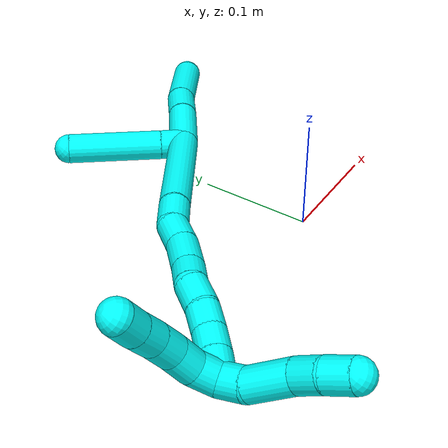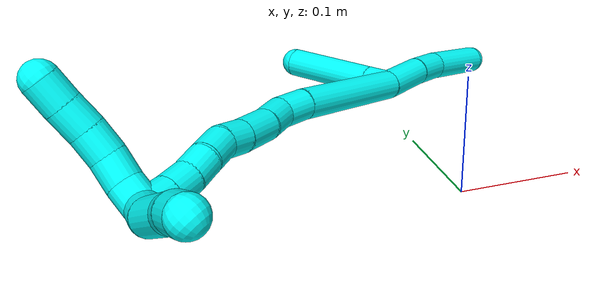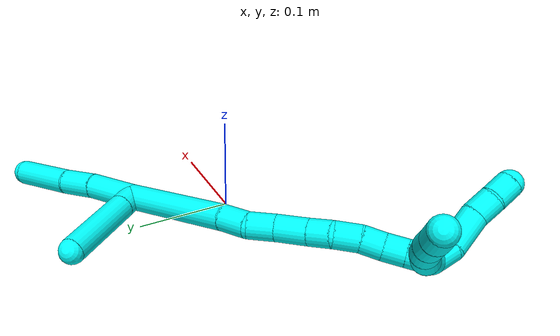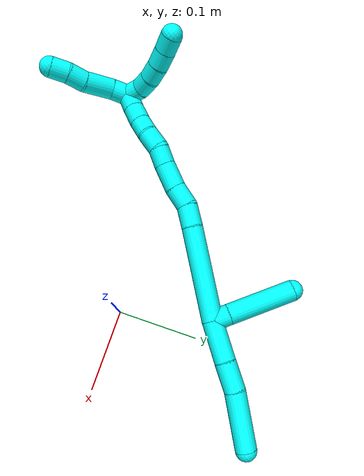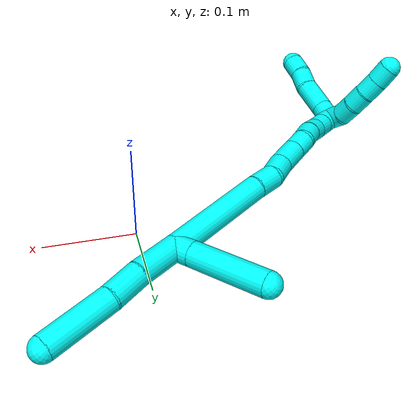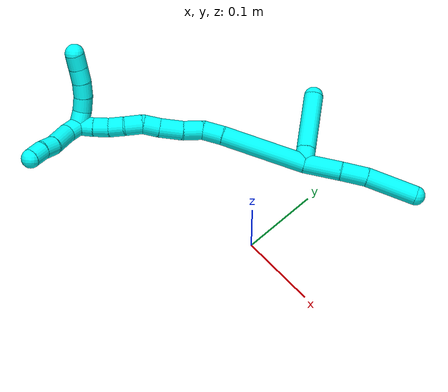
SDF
<sdf version="1.7">
 <world name="default">
  <model name="3">
   <static>0</static>
   <link name="3">
    <collision name="collision-cylinder-e_1_2_8">
     <pose>0.012745 0.01998 -0.003844 -1.76085 0.559586 -0.669558</pose>
     <geometry><cylinder><radius>0.0125</radius><length>0.048017</length></cylinder></geometry>
     <surface>
      <friction><ode><mu>1.16</mu><mu2>1.16</mu2><slip1>0</slip1><slip2>0</slip2></ode></friction>
      <contact><ode><kp>1e+06</kp><kd>1</kd><max_vel>0</max_vel><min_depth>0.001</min_depth></ode></contact>
     </surface>
    </collision>
    <visual name="visual-cylinder-e_1_2_8">
     <pose>0.012745 0.01998 -0.003844 -1.76085 0.559586 -0.669558</pose>
     <geometry><cylinder><radius>0.0125</radius><length>0.048017</length></cylinder></geometry>
     <material><ambient>0.003922 1 0.996078 1</ambient></material>
    </visual>
    <collision name="collision-cylinder-e_2_8_9">
     <pose>0.033257 0.055106 -0.011115 -1.79333 0.463807 -0.574756</pose>
     <geometry><cylinder><radius>0.0125</radius><length>0.034726</length></cylinder></geometry>
     <surface>
      <friction><ode><mu>1.16</mu><mu2>1.16</mu2><slip1>0</slip1><slip2>0</slip2></ode></friction>
      <contact><ode><kp>1e+06</kp><kd>1</kd><max_vel>0</max_vel><min_depth>0.001</min_depth></ode></contact>
     </surface>
    </collision>
    <visual name="visual-cylinder-e_2_8_9">
     <pose>0.033257 0.055106 -0.011115 -1.79333 0.463807 -0.574756</pose>
     <geometry><cylinder><radius>0.0125</radius><length>0.034726</length></cylinder></geometry>
     <material><ambient>0.003922 1 0.996078 1</ambient></material>
    </visual>
    <collision name="collision-cylinder-e_3_9_6">
     <pose>0.057229 0.09768 -0.025311 -1.94495 0.502807 -0.720653</pose>
     <geometry><cylinder><radius>0.0125</radius><length>0.067257</length></cylinder></geometry>
     <surface>
      <friction><ode><mu>1.16</mu><mu2>1.16</mu2><slip1>0</slip1><slip2>0</slip2></ode></friction>
      <contact><ode><kp>1e+06</kp><kd>1</kd><max_vel>0</max_vel><min_depth>0.001</min_depth></ode></contact>
     </surface>
    </collision>
    <visual name="visual-cylinder-e_3_9_6">
     <pose>0.057229 0.09768 -0.025311 -1.94495 0.502807 -0.720653</pose>
     <geometry><cylinder><radius>0.0125</radius><length>0.067257</length></cylinder></geometry>
     <material><ambient>0.003922 1 0.996078 1</ambient></material>
    </visual>
    <collision name="collision-cylinder-e_1_2_10">
     <pose>-0.005086 0.003832 0.007901 -0.451541 -0.524989 0.123274</pose>
     <geometry><cylinder><radius>0.0125</radius><length>0.020295</length></cylinder></geometry>
     <surface>
      <friction><ode><mu>1.16</mu><mu2>1.16</mu2><slip1>0</slip1><slip2>0</slip2></ode></friction>
      <contact><ode><kp>1e+06</kp><kd>1</kd><max_vel>0</max_vel><min_depth>0.001</min_depth></ode></contact>
     </surface>
    </collision>
    <visual name="visual-cylinder-e_1_2_10">
     <pose>-0.005086 0.003832 0.007901 -0.451541 -0.524989 0.123274</pose>
     <geometry><cylinder><radius>0.0125</radius><length>0.020295</length></cylinder></geometry>
     <material><ambient>0.003922 1 0.996078 1</ambient></material>
    </visual>
    <collision name="collision-cylinder-e_2_10_5">
     <pose>-0.029868 0.022974 0.04688 -0.457742 -0.516941 0.123023</pose>
     <geometry><cylinder><radius>0.0125</radius><length>0.079705</length></cylinder></geometry>
     <surface>
      <friction><ode><mu>1.16</mu><mu2>1.16</mu2><slip1>0</slip1><slip2>0</slip2></ode></friction>
      <contact><ode><kp>1e+06</kp><kd>1</kd><max_vel>0</max_vel><min_depth>0.001</min_depth></ode></contact>
     </surface>
    </collision>
    <visual name="visual-cylinder-e_2_10_5">
     <pose>-0.029868 0.022974 0.04688 -0.457742 -0.516941 0.123023</pose>
     <geometry><cylinder><radius>0.0125</radius><length>0.079705</length></cylinder></geometry>
     <material><ambient>0.003922 1 0.996078 1</ambient></material>
    </visual>
    <collision name="collision-cylinder-e_1_2_11">
     <pose>-0.027039 -0.045864 0.01605 1.23418 -0.50778 -0.364149</pose>
     <geometry><cylinder><radius>0.0125</radius><length>0.111216</length></cylinder></geometry>
     <surface>
      <friction><ode><mu>1.16</mu><mu2>1.16</mu2><slip1>0</slip1><slip2>0</slip2></ode></friction>
      <contact><ode><kp>1e+06</kp><kd>1</kd><max_vel>0</max_vel><min_depth>0.001</min_depth></ode></contact>
     </surface>
    </collision>
    <visual name="visual-cylinder-e_1_2_11">
     <pose>-0.027039 -0.045864 0.01605 1.23418 -0.50778 -0.364149</pose>
     <geometry><cylinder><radius>0.0125</radius><length>0.111216</length></cylinder></geometry>
     <material><ambient>0.003922 1 0.996078 1</ambient></material>
    </visual>
    <collision name="collision-cylinder-e_2_11_12">
     <pose>-0.061356 -0.102417 0.035006 1.30532 -0.581356 -0.449618</pose>
     <geometry><cylinder><radius>0.0125</radius><length>0.026507</length></cylinder></geometry>
     <surface>
      <friction><ode><mu>1.16</mu><mu2>1.16</mu2><slip1>0</slip1><slip2>0</slip2></ode></friction>
      <contact><ode><kp>1e+06</kp><kd>1</kd><max_vel>0</max_vel><min_depth>0.001</min_depth></ode></contact>
     </surface>
    </collision>
    <visual name="visual-cylinder-e_2_11_12">
     <pose>-0.061356 -0.102417 0.035006 1.30532 -0.581356 -0.449618</pose>
     <geometry><cylinder><radius>0.0125</radius><length>0.026507</length></cylinder></geometry>
     <material><ambient>0.003922 1 0.996078 1</ambient></material>
    </visual>
    <collision name="collision-cylinder-e_3_12_13">
     <pose>-0.073466 -0.124996 0.037289 1.62309 -0.385543 -0.405701</pose>
     <geometry><cylinder><radius>0.0125</radius><length>0.025701</length></cylinder></geometry>
     <surface>
      <friction><ode><mu>1.16</mu><mu2>1.16</mu2><slip1>0</slip1><slip2>0</slip2></ode></friction>
      <contact><ode><kp>1e+06</kp><kd>1</kd><max_vel>0</max_vel><min_depth>0.001</min_depth></ode></contact>
     </surface>
    </collision>
    <visual name="visual-cylinder-e_3_12_13">
     <pose>-0.073466 -0.124996 0.037289 1.62309 -0.385543 -0.405701</pose>
     <geometry><cylinder><radius>0.0125</radius><length>0.025701</length></cylinder></geometry>
     <material><ambient>0.003922 1 0.996078 1</ambient></material>
    </visual>
    <collision name="collision-cylinder-e_4_13_14">
     <pose>-0.084707 -0.15077 0.038217 1.45958 -0.430108 -0.385928</pose>
     <geometry><cylinder><radius>0.0125</radius><length>0.030738</length></cylinder></geometry>
     <surface>
      <friction><ode><mu>1.16</mu><mu2>1.16</mu2><slip1>0</slip1><slip2>0</slip2></ode></friction>
      <contact><ode><kp>1e+06</kp><kd>1</kd><max_vel>0</max_vel><min_depth>0.001</min_depth></ode></contact>
     </surface>
    </collision>
    <visual name="visual-cylinder-e_4_13_14">
     <pose>-0.084707 -0.15077 0.038217 1.45958 -0.430108 -0.385928</pose>
     <geometry><cylinder><radius>0.0125</radius><length>0.030738</length></cylinder></geometry>
     <material><ambient>0.003922 1 0.996078 1</ambient></material>
    </visual>
    <collision name="collision-cylinder-e_5_14_15">
     <pose>-0.095361 -0.17439 0.041909 1.35439 -0.402562 -0.325219</pose>
     <geometry><cylinder><radius>0.0125</radius><length>0.021671</length></cylinder></geometry>
     <surface>
      <friction><ode><mu>1.16</mu><mu2>1.16</mu2><slip1>0</slip1><slip2>0</slip2></ode></friction>
      <contact><ode><kp>1e+06</kp><kd>1</kd><max_vel>0</max_vel><min_depth>0.001</min_depth></ode></contact>
     </surface>
    </collision>
    <visual name="visual-cylinder-e_5_14_15">
     <pose>-0.095361 -0.17439 0.041909 1.35439 -0.402562 -0.325219</pose>
     <geometry><cylinder><radius>0.0125</radius><length>0.021671</length></cylinder></geometry>
     <material><ambient>0.003922 1 0.996078 1</ambient></material>
    </visual>
    <collision name="collision-cylinder-e_6_15_16">
     <pose>-0.104586 -0.194644 0.042475 1.71934 -0.437963 -0.505613</pose>
     <geometry><cylinder><radius>0.0125</radius><length>0.023485</length></cylinder></geometry>
     <surface>
      <friction><ode><mu>1.16</mu><mu2>1.16</mu2><slip1>0</slip1><slip2>0</slip2></ode></friction>
      <contact><ode><kp>1e+06</kp><kd>1</kd><max_vel>0</max_vel><min_depth>0.001</min_depth></ode></contact>
     </surface>
    </collision>
    <visual name="visual-cylinder-e_6_15_16">
     <pose>-0.104586 -0.194644 0.042475 1.71934 -0.437963 -0.505613</pose>
     <geometry><cylinder><radius>0.0125</radius><length>0.023485</length></cylinder></geometry>
     <material><ambient>0.003922 1 0.996078 1</ambient></material>
    </visual>
    <collision name="collision-cylinder-e_7_16_17">
     <pose>-0.115414 -0.213232 0.039388 1.75616 -0.618786 -0.735315</pose>
     <geometry><cylinder><radius>0.0125</radius><length>0.020162</length></cylinder></geometry>
     <surface>
      <friction><ode><mu>1.16</mu><mu2>1.16</mu2><slip1>0</slip1><slip2>0</slip2></ode></friction>
      <contact><ode><kp>1e+06</kp><kd>1</kd><max_vel>0</max_vel><min_depth>0.001</min_depth></ode></contact>
     </surface>
    </collision>
    <visual name="visual-cylinder-e_7_16_17">
     <pose>-0.115414 -0.213232 0.039388 1.75616 -0.618786 -0.735315</pose>
     <geometry><cylinder><radius>0.0125</radius><length>0.020162</length></cylinder></geometry>
     <material><ambient>0.003922 1 0.996078 1</ambient></material>
    </visual>
    <collision name="collision-cylinder-e_8_17_18">
     <pose>-0.126773 -0.229892 0.037651 1.59681 -0.570396 -0.584601</pose>
     <geometry><cylinder><radius>0.0125</radius><length>0.020416</length></cylinder></geometry>
     <surface>
      <friction><ode><mu>1.16</mu><mu2>1.16</mu2><slip1>0</slip1><slip2>0</slip2></ode></friction>
      <contact><ode><kp>1e+06</kp><kd>1</kd><max_vel>0</max_vel><min_depth>0.001</min_depth></ode></contact>
     </surface>
    </collision>
    <visual name="visual-cylinder-e_8_17_18">
     <pose>-0.126773 -0.229892 0.037651 1.59681 -0.570396 -0.584601</pose>
     <geometry><cylinder><radius>0.0125</radius><length>0.020416</length></cylinder></geometry>
     <material><ambient>0.003922 1 0.996078 1</ambient></material>
    </visual>
    <collision name="collision-cylinder-e_9_18_1">
     <pose>-0.137696 -0.246937 0.037941 1.51014 -0.568411 -0.536568</pose>
     <geometry><cylinder><radius>0.0125</radius><length>0.020104</length></cylinder></geometry>
     <surface>
      <friction><ode><mu>1.16</mu><mu2>1.16</mu2><slip1>0</slip1><slip2>0</slip2></ode></friction>
      <contact><ode><kp>1e+06</kp><kd>1</kd><max_vel>0</max_vel><min_depth>0.001</min_depth></ode></contact>
     </surface>
    </collision>
    <visual name="visual-cylinder-e_9_18_1">
     <pose>-0.137696 -0.246937 0.037941 1.51014 -0.568411 -0.536568</pose>
     <geometry><cylinder><radius>0.0125</radius><length>0.020104</length></cylinder></geometry>
     <material><ambient>0.003922 1 0.996078 1</ambient></material>
    </visual>
    <collision name="collision-cylinder-e_1_1_19">
     <pose>-0.143079 -0.253092 0.048186 -0.232124 0.002769 -0.000323</pose>
     <geometry><cylinder><radius>0.0125</radius><length>0.02</length></cylinder></geometry>
     <surface>
      <friction><ode><mu>1.16</mu><mu2>1.16</mu2><slip1>0</slip1><slip2>0</slip2></ode></friction>
      <contact><ode><kp>1e+06</kp><kd>1</kd><max_vel>0</max_vel><min_depth>0.001</min_depth></ode></contact>
     </surface>
    </collision>
    <visual name="visual-cylinder-e_1_1_19">
     <pose>-0.143079 -0.253092 0.048186 -0.232124 0.002769 -0.000323</pose>
     <geometry><cylinder><radius>0.0125</radius><length>0.02</length></cylinder></geometry>
     <material><ambient>0.003922 1 0.996078 1</ambient></material>
    </visual>
    <collision name="collision-cylinder-e_2_19_20">
     <pose>-0.140955 -0.251074 0.067692 0.028903 0.211169 0.003063</pose>
     <geometry><cylinder><radius>0.0125</radius><length>0.02</length></cylinder></geometry>
     <surface>
      <friction><ode><mu>1.16</mu><mu2>1.16</mu2><slip1>0</slip1><slip2>0</slip2></ode></friction>
      <contact><ode><kp>1e+06</kp><kd>1</kd><max_vel>0</max_vel><min_depth>0.001</min_depth></ode></contact>
     </surface>
    </collision>
    <visual name="visual-cylinder-e_2_19_20">
     <pose>-0.140955 -0.251074 0.067692 0.028903 0.211169 0.003063</pose>
     <geometry><cylinder><radius>0.0125</radius><length>0.02</length></cylinder></geometry>
     <material><ambient>0.003922 1 0.996078 1</ambient></material>
    </visual>
    <collision name="collision-cylinder-e_3_20_21">
     <pose>-0.137324 -0.253294 0.087155 0.197271 0.154126 0.015282</pose>
     <geometry><cylinder><radius>0.0125</radius><length>0.02</length></cylinder></geometry>
     <surface>
      <friction><ode><mu>1.16</mu><mu2>1.16</mu2><slip1>0</slip1><slip2>0</slip2></ode></friction>
      <contact><ode><kp>1e+06</kp><kd>1</kd><max_vel>0</max_vel><min_depth>0.001</min_depth></ode></contact>
     </surface>
    </collision>
    <visual name="visual-cylinder-e_3_20_21">
     <pose>-0.137324 -0.253294 0.087155 0.197271 0.154126 0.015282</pose>
     <geometry><cylinder><radius>0.0125</radius><length>0.02</length></cylinder></geometry>
     <material><ambient>0.003922 1 0.996078 1</ambient></material>
    </visual>
    <collision name="collision-cylinder-e_4_21_22">
     <pose>-0.134798 -0.258288 0.106314 0.312362 0.099292 0.015647</pose>
     <geometry><cylinder><radius>0.0125</radius><length>0.02</length></cylinder></geometry>
     <surface>
      <friction><ode><mu>1.16</mu><mu2>1.16</mu2><slip1>0</slip1><slip2>0</slip2></ode></friction>
      <contact><ode><kp>1e+06</kp><kd>1</kd><max_vel>0</max_vel><min_depth>0.001</min_depth></ode></contact>
     </surface>
    </collision>
    <visual name="visual-cylinder-e_4_21_22">
     <pose>-0.134798 -0.258288 0.106314 0.312362 0.099292 0.015647</pose>
     <geometry><cylinder><radius>0.0125</radius><length>0.02</length></cylinder></geometry>
     <material><ambient>0.003922 1 0.996078 1</ambient></material>
    </visual>
    <collision name="collision-cylinder-e_5_22_4">
     <pose>-0.132186 -0.264604 0.125098 0.336488 0.162739 0.027701</pose>
     <geometry><cylinder><radius>0.0125</radius><length>0.02</length></cylinder></geometry>
     <surface>
      <friction><ode><mu>1.16</mu><mu2>1.16</mu2><slip1>0</slip1><slip2>0</slip2></ode></friction>
      <contact><ode><kp>1e+06</kp><kd>1</kd><max_vel>0</max_vel><min_depth>0.001</min_depth></ode></contact>
     </surface>
    </collision>
    <visual name="visual-cylinder-e_5_22_4">
     <pose>-0.132186 -0.264604 0.125098 0.336488 0.162739 0.027701</pose>
     <geometry><cylinder><radius>0.0125</radius><length>0.02</length></cylinder></geometry>
     <material><ambient>0.003922 1 0.996078 1</ambient></material>
    </visual>
    <collision name="collision-cylinder-e_1_1_23">
     <pose>-0.140129 -0.264747 0.034406 1.97922 0.284213 0.428916</pose>
     <geometry><cylinder><radius>0.0125</radius><length>0.021237</length></cylinder></geometry>
     <surface>
      <friction><ode><mu>1.16</mu><mu2>1.16</mu2><slip1>0</slip1><slip2>0</slip2></ode></friction>
      <contact><ode><kp>1e+06</kp><kd>1</kd><max_vel>0</max_vel><min_depth>0.001</min_depth></ode></contact>
     </surface>
    </collision>
    <visual name="visual-cylinder-e_1_1_23">
     <pose>-0.140129 -0.264747 0.034406 1.97922 0.284213 0.428916</pose>
     <geometry><cylinder><radius>0.0125</radius><length>0.021237</length></cylinder></geometry>
     <material><ambient>0.003922 1 0.996078 1</ambient></material>
    </visual>
    <collision name="collision-cylinder-e_2_23_24">
     <pose>-0.126743 -0.287631 0.025122 1.94009 0.622369 0.877694</pose>
     <geometry><cylinder><radius>0.0125</radius><length>0.035712</length></cylinder></geometry>
     <surface>
      <friction><ode><mu>1.16</mu><mu2>1.16</mu2><slip1>0</slip1><slip2>0</slip2></ode></friction>
      <contact><ode><kp>1e+06</kp><kd>1</kd><max_vel>0</max_vel><min_depth>0.001</min_depth></ode></contact>
     </surface>
    </collision>
    <visual name="visual-cylinder-e_2_23_24">
     <pose>-0.126743 -0.287631 0.025122 1.94009 0.622369 0.877694</pose>
     <geometry><cylinder><radius>0.0125</radius><length>0.035712</length></cylinder></geometry>
     <material><ambient>0.003922 1 0.996078 1</ambient></material>
    </visual>
    <collision name="collision-cylinder-e_3_24_25">
     <pose>-0.11176 -0.310666 0.018088 1.75767 0.44161 0.529073</pose>
     <geometry><cylinder><radius>0.0125</radius><length>0.021399</length></cylinder></geometry>
     <surface>
      <friction><ode><mu>1.16</mu><mu2>1.16</mu2><slip1>0</slip1><slip2>0</slip2></ode></friction>
      <contact><ode><kp>1e+06</kp><kd>1</kd><max_vel>0</max_vel><min_depth>0.001</min_depth></ode></contact>
     </surface>
    </collision>
    <visual name="visual-cylinder-e_3_24_25">
     <pose>-0.11176 -0.310666 0.018088 1.75767 0.44161 0.529073</pose>
     <geometry><cylinder><radius>0.0125</radius><length>0.021399</length></cylinder></geometry>
     <material><ambient>0.003922 1 0.996078 1</ambient></material>
    </visual>
    <collision name="collision-cylinder-e_4_25_3">
     <pose>-0.102526 -0.329226 0.012621 1.95585 0.445156 0.648182</pose>
     <geometry><cylinder><radius>0.0125</radius><length>0.021652</length></cylinder></geometry>
     <surface>
      <friction><ode><mu>1.16</mu><mu2>1.16</mu2><slip1>0</slip1><slip2>0</slip2></ode></friction>
      <contact><ode><kp>1e+06</kp><kd>1</kd><max_vel>0</max_vel><min_depth>0.001</min_depth></ode></contact>
     </surface>
    </collision>
    <visual name="visual-cylinder-e_4_25_3">
     <pose>-0.102526 -0.329226 0.012621 1.95585 0.445156 0.648182</pose>
     <geometry><cylinder><radius>0.0125</radius><length>0.021652</length></cylinder></geometry>
     <material><ambient>0.003922 1 0.996078 1</ambient></material>
    </visual>
    <collision name="collision-sphere-3">
     <pose>-0.097864 -0.338281 0.008951 0 -0 0</pose>
     <geometry><sphere><radius>0.0125</radius></sphere></geometry>
     <surface>
      <friction><ode><mu>1.16</mu><mu2>1.16</mu2><slip1>0</slip1><slip2>0</slip2></ode></friction>
      <contact><ode><kp>1e+06</kp><kd>1</kd><max_vel>0</max_vel><min_depth>0.001</min_depth></ode></contact>
     </surface>
    </collision>
    <visual name="visual-sphere-3">
     <pose>-0.097864 -0.338281 0.008951 0 -0 0</pose>
     <geometry><sphere><radius>0.0125</radius></sphere></geometry>
     <material><ambient>0.003922 1 0.996078 1</ambient></material>
    </visual>
    <collision name="collision-sphere-25">
     <pose>-0.107187 -0.320171 0.01629 0 -0 0</pose>
     <geometry><sphere><radius>0.0125</radius></sphere></geometry>
     <surface>
      <friction><ode><mu>1.16</mu><mu2>1.16</mu2><slip1>0</slip1><slip2>0</slip2></ode></friction>
      <contact><ode><kp>1e+06</kp><kd>1</kd><max_vel>0</max_vel><min_depth>0.001</min_depth></ode></contact>
     </surface>
    </collision>
    <visual name="visual-sphere-25">
     <pose>-0.107187 -0.320171 0.01629 0 -0 0</pose>
     <geometry><sphere><radius>0.0125</radius></sphere></geometry>
     <material><ambient>0.003922 1 0.996078 1</ambient></material>
    </visual>
    <collision name="collision-sphere-24">
     <pose>-0.116333 -0.301161 0.019885 0 -0 0</pose>
     <geometry><sphere><radius>0.0125</radius></sphere></geometry>
     <surface>
      <friction><ode><mu>1.16</mu><mu2>1.16</mu2><slip1>0</slip1><slip2>0</slip2></ode></friction>
      <contact><ode><kp>1e+06</kp><kd>1</kd><max_vel>0</max_vel><min_depth>0.001</min_depth></ode></contact>
     </surface>
    </collision>
    <visual name="visual-sphere-24">
     <pose>-0.116333 -0.301161 0.019885 0 -0 0</pose>
     <geometry><sphere><radius>0.0125</radius></sphere></geometry>
     <material><ambient>0.003922 1 0.996078 1</ambient></material>
    </visual>
    <collision name="collision-sphere-23">
     <pose>-0.137152 -0.274101 0.030358 0 -0 0</pose>
     <geometry><sphere><radius>0.0125</radius></sphere></geometry>
     <surface>
      <friction><ode><mu>1.16</mu><mu2>1.16</mu2><slip1>0</slip1><slip2>0</slip2></ode></friction>
      <contact><ode><kp>1e+06</kp><kd>1</kd><max_vel>0</max_vel><min_depth>0.001</min_depth></ode></contact>
     </surface>
    </collision>
    <visual name="visual-sphere-23">
     <pose>-0.137152 -0.274101 0.030358 0 -0 0</pose>
     <geometry><sphere><radius>0.0125</radius></sphere></geometry>
     <material><ambient>0.003922 1 0.996078 1</ambient></material>
    </visual>
    <collision name="collision-sphere-4">
     <pose>-0.130566 -0.267863 0.134413 0 -0 0</pose>
     <geometry><sphere><radius>0.0125</radius></sphere></geometry>
     <surface>
      <friction><ode><mu>1.16</mu><mu2>1.16</mu2><slip1>0</slip1><slip2>0</slip2></ode></friction>
      <contact><ode><kp>1e+06</kp><kd>1</kd><max_vel>0</max_vel><min_depth>0.001</min_depth></ode></contact>
     </surface>
    </collision>
    <visual name="visual-sphere-4">
     <pose>-0.130566 -0.267863 0.134413 0 -0 0</pose>
     <geometry><sphere><radius>0.0125</radius></sphere></geometry>
     <material><ambient>0.003922 1 0.996078 1</ambient></material>
    </visual>
    <collision name="collision-sphere-22">
     <pose>-0.133806 -0.261346 0.115784 0 -0 0</pose>
     <geometry><sphere><radius>0.0125</radius></sphere></geometry>
     <surface>
      <friction><ode><mu>1.16</mu><mu2>1.16</mu2><slip1>0</slip1><slip2>0</slip2></ode></friction>
      <contact><ode><kp>1e+06</kp><kd>1</kd><max_vel>0</max_vel><min_depth>0.001</min_depth></ode></contact>
     </surface>
    </collision>
    <visual name="visual-sphere-22">
     <pose>-0.133806 -0.261346 0.115784 0 -0 0</pose>
     <geometry><sphere><radius>0.0125</radius></sphere></geometry>
     <material><ambient>0.003922 1 0.996078 1</ambient></material>
    </visual>
    <collision name="collision-sphere-21">
     <pose>-0.135789 -0.25523 0.096845 0 -0 0</pose>
     <geometry><sphere><radius>0.0125</radius></sphere></geometry>
     <surface>
      <friction><ode><mu>1.16</mu><mu2>1.16</mu2><slip1>0</slip1><slip2>0</slip2></ode></friction>
      <contact><ode><kp>1e+06</kp><kd>1</kd><max_vel>0</max_vel><min_depth>0.001</min_depth></ode></contact>
     </surface>
    </collision>
    <visual name="visual-sphere-21">
     <pose>-0.135789 -0.25523 0.096845 0 -0 0</pose>
     <geometry><sphere><radius>0.0125</radius></sphere></geometry>
     <material><ambient>0.003922 1 0.996078 1</ambient></material>
    </visual>
    <collision name="collision-sphere-20">
     <pose>-0.138859 -0.251357 0.077466 0 -0 0</pose>
     <geometry><sphere><radius>0.0125</radius></sphere></geometry>
     <surface>
      <friction><ode><mu>1.16</mu><mu2>1.16</mu2><slip1>0</slip1><slip2>0</slip2></ode></friction>
      <contact><ode><kp>1e+06</kp><kd>1</kd><max_vel>0</max_vel><min_depth>0.001</min_depth></ode></contact>
     </surface>
    </collision>
    <visual name="visual-sphere-20">
     <pose>-0.138859 -0.251357 0.077466 0 -0 0</pose>
     <geometry><sphere><radius>0.0125</radius></sphere></geometry>
     <material><ambient>0.003922 1 0.996078 1</ambient></material>
    </visual>
    <collision name="collision-sphere-5">
     <pose>-0.049564 0.038284 0.077959 0 -0 0</pose>
     <geometry><sphere><radius>0.0125</radius></sphere></geometry>
     <surface>
      <friction><ode><mu>1.16</mu><mu2>1.16</mu2><slip1>0</slip1><slip2>0</slip2></ode></friction>
      <contact><ode><kp>1e+06</kp><kd>1</kd><max_vel>0</max_vel><min_depth>0.001</min_depth></ode></contact>
     </surface>
    </collision>
    <visual name="visual-sphere-5">
     <pose>-0.049564 0.038284 0.077959 0 -0 0</pose>
     <geometry><sphere><radius>0.0125</radius></sphere></geometry>
     <material><ambient>0.003922 1 0.996078 1</ambient></material>
    </visual>
    <collision name="collision-sphere-10">
     <pose>-0.010172 0.007663 0.015801 0 -0 0</pose>
     <geometry><sphere><radius>0.0125</radius></sphere></geometry>
     <surface>
      <friction><ode><mu>1.16</mu><mu2>1.16</mu2><slip1>0</slip1><slip2>0</slip2></ode></friction>
      <contact><ode><kp>1e+06</kp><kd>1</kd><max_vel>0</max_vel><min_depth>0.001</min_depth></ode></contact>
     </surface>
    </collision>
    <visual name="visual-sphere-10">
     <pose>-0.010172 0.007663 0.015801 0 -0 0</pose>
     <geometry><sphere><radius>0.0125</radius></sphere></geometry>
     <material><ambient>0.003922 1 0.996078 1</ambient></material>
    </visual>
    <collision name="collision-sphere-6">
     <pose>0.073434 0.125108 -0.036081 0 -0 0</pose>
     <geometry><sphere><radius>0.0125</radius></sphere></geometry>
     <surface>
      <friction><ode><mu>1.16</mu><mu2>1.16</mu2><slip1>0</slip1><slip2>0</slip2></ode></friction>
      <contact><ode><kp>1e+06</kp><kd>1</kd><max_vel>0</max_vel><min_depth>0.001</min_depth></ode></contact>
     </surface>
    </collision>
    <visual name="visual-sphere-6">
     <pose>0.073434 0.125108 -0.036081 0 -0 0</pose>
     <geometry><sphere><radius>0.0125</radius></sphere></geometry>
     <material><ambient>0.003922 1 0.996078 1</ambient></material>
    </visual>
    <collision name="collision-sphere-9">
     <pose>0.041024 0.070252 -0.014542 0 -0 0</pose>
     <geometry><sphere><radius>0.0125</radius></sphere></geometry>
     <surface>
      <friction><ode><mu>1.16</mu><mu2>1.16</mu2><slip1>0</slip1><slip2>0</slip2></ode></friction>
      <contact><ode><kp>1e+06</kp><kd>1</kd><max_vel>0</max_vel><min_depth>0.001</min_depth></ode></contact>
     </surface>
    </collision>
    <visual name="visual-sphere-9">
     <pose>0.041024 0.070252 -0.014542 0 -0 0</pose>
     <geometry><sphere><radius>0.0125</radius></sphere></geometry>
     <material><ambient>0.003922 1 0.996078 1</ambient></material>
    </visual>
    <collision name="collision-sphere-2">
     <geometry><sphere><radius>0.0125</radius></sphere></geometry>
     <surface>
      <friction><ode><mu>1.16</mu><mu2>1.16</mu2><slip1>0</slip1><slip2>0</slip2></ode></friction>
      <contact><ode><kp>1e+06</kp><kd>1</kd><max_vel>0</max_vel><min_depth>0.001</min_depth></ode></contact>
     </surface>
    </collision>
    <visual name="visual-sphere-2">
     <geometry><sphere><radius>0.0125</radius></sphere></geometry>
     <material><ambient>0.003922 1 0.996078 1</ambient></material>
    </visual>
    <collision name="collision-sphere-19">
     <pose>-0.143051 -0.250792 0.057918 0 -0 0</pose>
     <geometry><sphere><radius>0.0125</radius></sphere></geometry>
     <surface>
      <friction><ode><mu>1.16</mu><mu2>1.16</mu2><slip1>0</slip1><slip2>0</slip2></ode></friction>
      <contact><ode><kp>1e+06</kp><kd>1</kd><max_vel>0</max_vel><min_depth>0.001</min_depth></ode></contact>
     </surface>
    </collision>
    <visual name="visual-sphere-19">
     <pose>-0.143051 -0.250792 0.057918 0 -0 0</pose>
     <geometry><sphere><radius>0.0125</radius></sphere></geometry>
     <material><ambient>0.003922 1 0.996078 1</ambient></material>
    </visual>
    <collision name="collision-sphere-8">
     <pose>0.025489 0.039961 -0.007687 0 -0 0</pose>
     <geometry><sphere><radius>0.0125</radius></sphere></geometry>
     <surface>
      <friction><ode><mu>1.16</mu><mu2>1.16</mu2><slip1>0</slip1><slip2>0</slip2></ode></friction>
      <contact><ode><kp>1e+06</kp><kd>1</kd><max_vel>0</max_vel><min_depth>0.001</min_depth></ode></contact>
     </surface>
    </collision>
    <visual name="visual-sphere-8">
     <pose>0.025489 0.039961 -0.007687 0 -0 0</pose>
     <geometry><sphere><radius>0.0125</radius></sphere></geometry>
     <material><ambient>0.003922 1 0.996078 1</ambient></material>
    </visual>
    <collision name="collision-sphere-11">
     <pose>-0.054077 -0.091729 0.0321 0 -0 0</pose>
     <geometry><sphere><radius>0.0125</radius></sphere></geometry>
     <surface>
      <friction><ode><mu>1.16</mu><mu2>1.16</mu2><slip1>0</slip1><slip2>0</slip2></ode></friction>
      <contact><ode><kp>1e+06</kp><kd>1</kd><max_vel>0</max_vel><min_depth>0.001</min_depth></ode></contact>
     </surface>
    </collision>
    <visual name="visual-sphere-11">
     <pose>-0.054077 -0.091729 0.0321 0 -0 0</pose>
     <geometry><sphere><radius>0.0125</radius></sphere></geometry>
     <material><ambient>0.003922 1 0.996078 1</ambient></material>
    </visual>
    <collision name="collision-sphere-12">
     <pose>-0.068634 -0.113105 0.037912 0 -0 0</pose>
     <geometry><sphere><radius>0.0125</radius></sphere></geometry>
     <surface>
      <friction><ode><mu>1.16</mu><mu2>1.16</mu2><slip1>0</slip1><slip2>0</slip2></ode></friction>
      <contact><ode><kp>1e+06</kp><kd>1</kd><max_vel>0</max_vel><min_depth>0.001</min_depth></ode></contact>
     </surface>
    </collision>
    <visual name="visual-sphere-12">
     <pose>-0.068634 -0.113105 0.037912 0 -0 0</pose>
     <geometry><sphere><radius>0.0125</radius></sphere></geometry>
     <material><ambient>0.003922 1 0.996078 1</ambient></material>
    </visual>
    <collision name="collision-sphere-13">
     <pose>-0.078299 -0.136887 0.036667 0 -0 0</pose>
     <geometry><sphere><radius>0.0125</radius></sphere></geometry>
     <surface>
      <friction><ode><mu>1.16</mu><mu2>1.16</mu2><slip1>0</slip1><slip2>0</slip2></ode></friction>
      <contact><ode><kp>1e+06</kp><kd>1</kd><max_vel>0</max_vel><min_depth>0.001</min_depth></ode></contact>
     </surface>
    </collision>
    <visual name="visual-sphere-13">
     <pose>-0.078299 -0.136887 0.036667 0 -0 0</pose>
     <geometry><sphere><radius>0.0125</radius></sphere></geometry>
     <material><ambient>0.003922 1 0.996078 1</ambient></material>
    </visual>
    <collision name="collision-sphere-14">
     <pose>-0.091116 -0.164653 0.039768 0 -0 0</pose>
     <geometry><sphere><radius>0.0125</radius></sphere></geometry>
     <surface>
      <friction><ode><mu>1.16</mu><mu2>1.16</mu2><slip1>0</slip1><slip2>0</slip2></ode></friction>
      <contact><ode><kp>1e+06</kp><kd>1</kd><max_vel>0</max_vel><min_depth>0.001</min_depth></ode></contact>
     </surface>
    </collision>
    <visual name="visual-sphere-14">
     <pose>-0.091116 -0.164653 0.039768 0 -0 0</pose>
     <geometry><sphere><radius>0.0125</radius></sphere></geometry>
     <material><ambient>0.003922 1 0.996078 1</ambient></material>
    </visual>
    <collision name="collision-sphere-15">
     <pose>-0.099606 -0.184127 0.044049 0 -0 0</pose>
     <geometry><sphere><radius>0.0125</radius></sphere></geometry>
     <surface>
      <friction><ode><mu>1.16</mu><mu2>1.16</mu2><slip1>0</slip1><slip2>0</slip2></ode></friction>
      <contact><ode><kp>1e+06</kp><kd>1</kd><max_vel>0</max_vel><min_depth>0.001</min_depth></ode></contact>
     </surface>
    </collision>
    <visual name="visual-sphere-15">
     <pose>-0.099606 -0.184127 0.044049 0 -0 0</pose>
     <geometry><sphere><radius>0.0125</radius></sphere></geometry>
     <material><ambient>0.003922 1 0.996078 1</ambient></material>
    </visual>
    <collision name="collision-sphere-16">
     <pose>-0.109566 -0.205161 0.040901 0 -0 0</pose>
     <geometry><sphere><radius>0.0125</radius></sphere></geometry>
     <surface>
      <friction><ode><mu>1.16</mu><mu2>1.16</mu2><slip1>0</slip1><slip2>0</slip2></ode></friction>
      <contact><ode><kp>1e+06</kp><kd>1</kd><max_vel>0</max_vel><min_depth>0.001</min_depth></ode></contact>
     </surface>
    </collision>
    <visual name="visual-sphere-16">
     <pose>-0.109566 -0.205161 0.040901 0 -0 0</pose>
     <geometry><sphere><radius>0.0125</radius></sphere></geometry>
     <material><ambient>0.003922 1 0.996078 1</ambient></material>
    </visual>
    <collision name="collision-sphere-17">
     <pose>-0.121261 -0.221303 0.037874 0 -0 0</pose>
     <geometry><sphere><radius>0.0125</radius></sphere></geometry>
     <surface>
      <friction><ode><mu>1.16</mu><mu2>1.16</mu2><slip1>0</slip1><slip2>0</slip2></ode></friction>
      <contact><ode><kp>1e+06</kp><kd>1</kd><max_vel>0</max_vel><min_depth>0.001</min_depth></ode></contact>
     </surface>
    </collision>
    <visual name="visual-sphere-17">
     <pose>-0.121261 -0.221303 0.037874 0 -0 0</pose>
     <geometry><sphere><radius>0.0125</radius></sphere></geometry>
     <material><ambient>0.003922 1 0.996078 1</ambient></material>
    </visual>
    <collision name="collision-sphere-18">
     <pose>-0.132285 -0.238481 0.037427 0 -0 0</pose>
     <geometry><sphere><radius>0.0125</radius></sphere></geometry>
     <surface>
      <friction><ode><mu>1.16</mu><mu2>1.16</mu2><slip1>0</slip1><slip2>0</slip2></ode></friction>
      <contact><ode><kp>1e+06</kp><kd>1</kd><max_vel>0</max_vel><min_depth>0.001</min_depth></ode></contact>
     </surface>
    </collision>
    <visual name="visual-sphere-18">
     <pose>-0.132285 -0.238481 0.037427 0 -0 0</pose>
     <geometry><sphere><radius>0.0125</radius></sphere></geometry>
     <material><ambient>0.003922 1 0.996078 1</ambient></material>
    </visual>
    <collision name="collision-sphere-1">
     <pose>-0.143107 -0.255393 0.038454 0 -0 0</pose>
     <geometry><sphere><radius>0.0125</radius></sphere></geometry>
     <surface>
      <friction><ode><mu>1.16</mu><mu2>1.16</mu2><slip1>0</slip1><slip2>0</slip2></ode></friction>
      <contact><ode><kp>1e+06</kp><kd>1</kd><max_vel>0</max_vel><min_depth>0.001</min_depth></ode></contact>
     </surface>
    </collision>
    <visual name="visual-sphere-1">
     <pose>-0.143107 -0.255393 0.038454 0 -0 0</pose>
     <geometry><sphere><radius>0.0125</radius></sphere></geometry>
     <material><ambient>0.003922 1 0.996078 1</ambient></material>
    </visual>
    <inertial>
     <pose>-0.058773 -0.109195 0.028905 0 -0 0</pose>
     <mass>0.75</mass>
     <inertia>
      <ixx>0.000132</ixx>
      <ixy>0</ixy>
      <ixz>0</ixz>
      <iyy>4.2e-05</iyy>
      <iyz>0</iyz>
      <izz>0.000141</izz>
     </inertia>
    </inertial>
   </link>
   <pose>-0.021576 0.111326 0.054125 -0.517336 -0.745863 -0.078922</pose>
  </model>
 </world>
</sdf>
